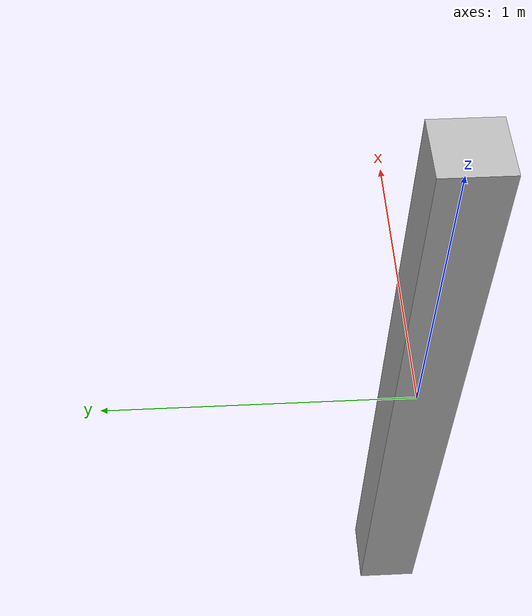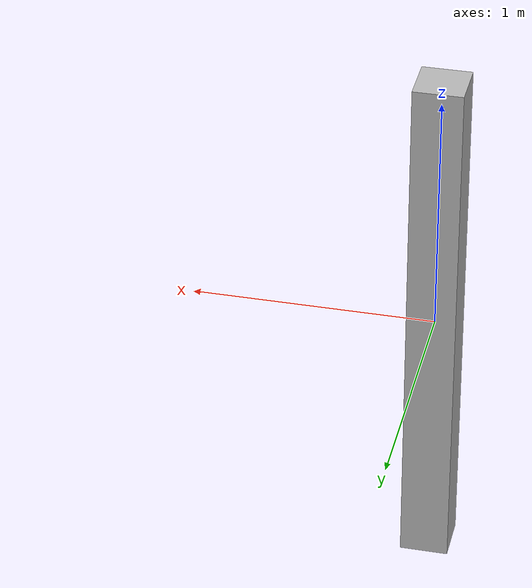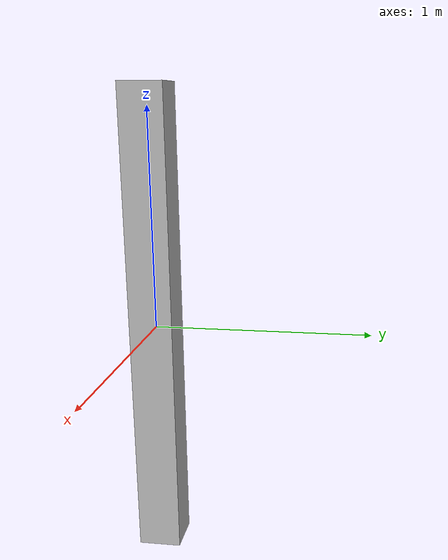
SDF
<?xml version="1.0" ?>
<sdf version="1.9">
  <model name="add_scoped_sub">

    <include>
      <name>simple_model</name>
      <uri>package://process_model_directives_test/simple_model.sdf</uri>
    </include>

    <!-- This will implicitly resolve to the `simple_model` instance. -->
    <frame name="sub_added_frame" attached_to="simple_model::frame">
      <pose>10 20 30   0 0 0</pose>
    </frame>

    <include>
      <name>extra_model</name>
      <uri>package://process_model_directives_test/simple_model.sdf</uri>
      <placement_frame>base</placement_frame>
      <pose relative_to="simple_model::frame"/>
    </include>

    <!--
    A weld can be replaced by having a zero relative pose between the two frames,
    as well as a fixed joint between them.
    -->
    <joint name="add_scoped_sub_weld" type="fixed">
      <parent>simple_model::frame</parent>
      <child>extra_model::base</child>
    </joint>

  </model>
</sdf>

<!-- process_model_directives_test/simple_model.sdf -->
<sdf version="1.9">
  <model name="scoped_model">
    <link name="base">
      <inertial>
        <mass>1</mass>
      </inertial>
      <visual name="visual">
        <geometry>
          <box>
            <size>0.2 0.2 2.2</size>
          </box>
        </geometry>
        <material>
          <!--
              Test usage of diffuse map from a separate resource that requires
              package:// URI resolution.
          -->
          <drake:diffuse_map>
            package://process_model_directives_test/circle.png
          </drake:diffuse_map>
        </material>
      </visual>
    </link>
    <frame name="frame">
      <pose relative_to="base">1 2 3  0 0 0</pose>
    </frame>
  </model>
</sdf>
